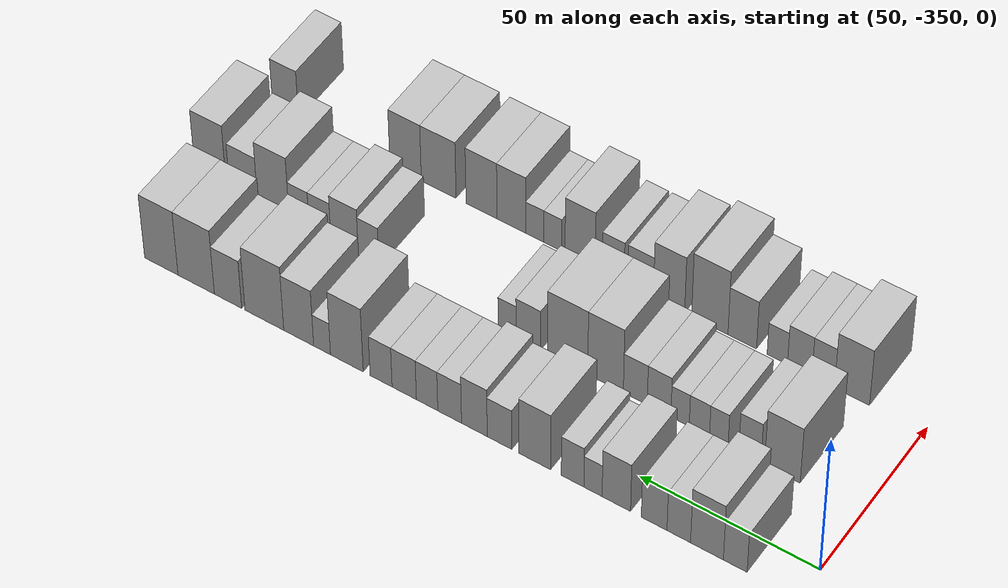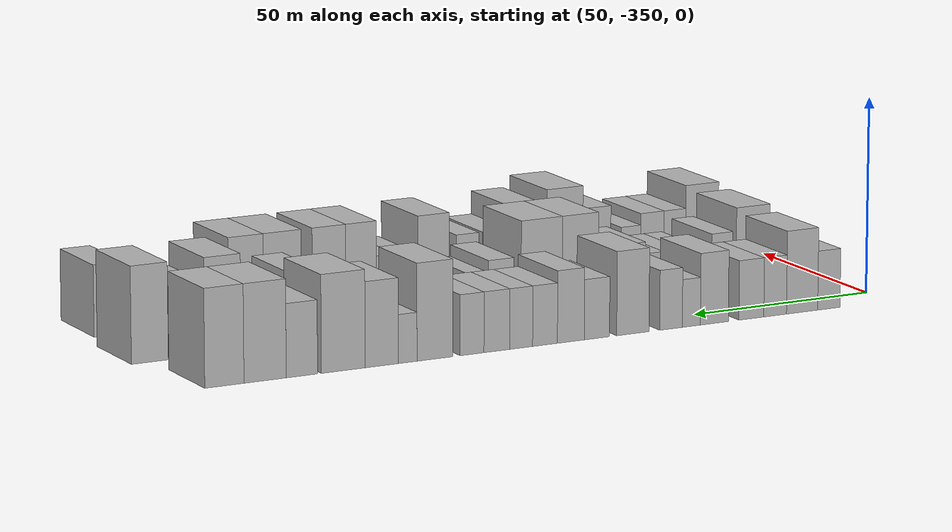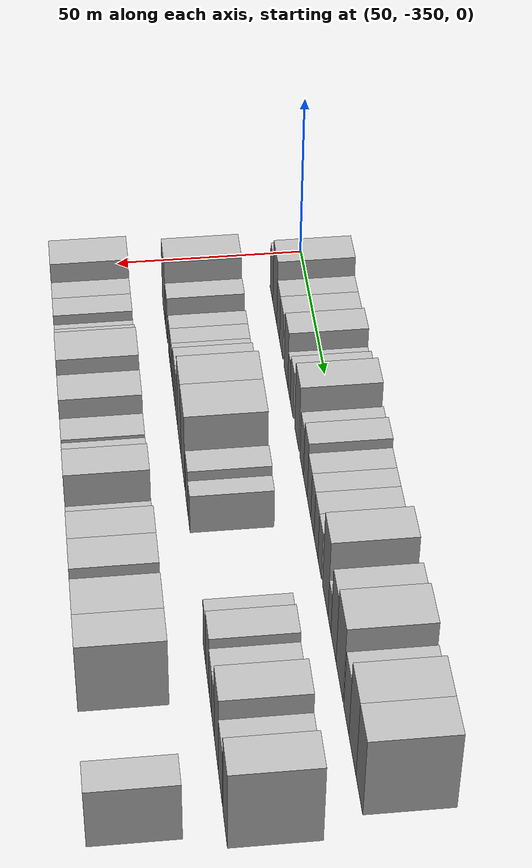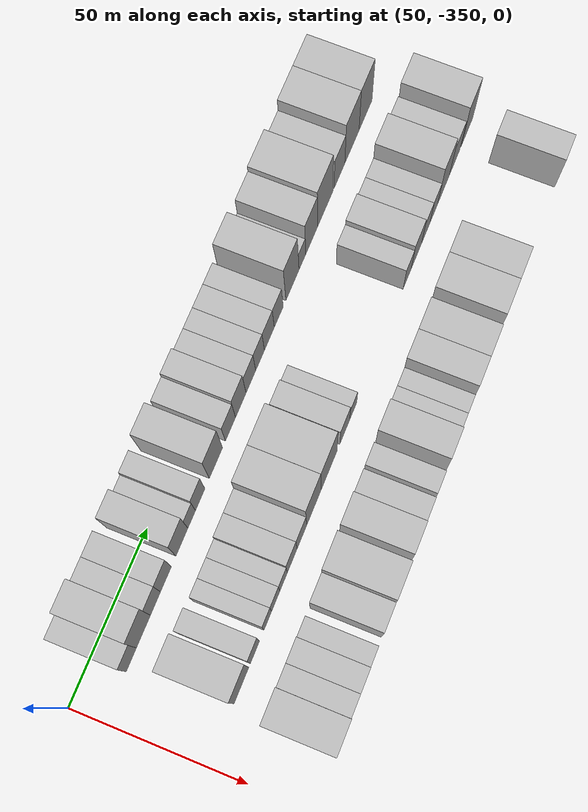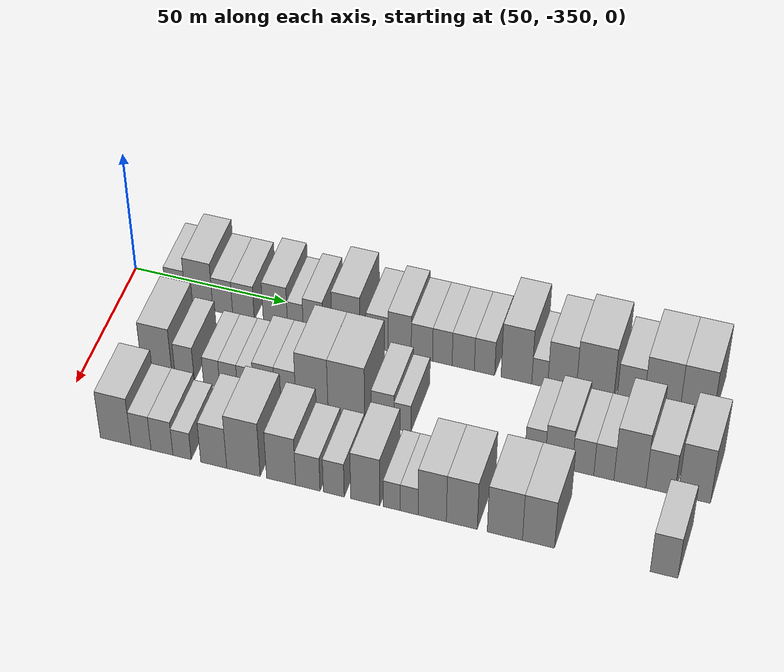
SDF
<sdf version="1.6">
 <world name="default">
  <model name="building_1">
   <static>1</static>
   <pose>50.0000 -332.7502 0 0.000000 0.000000 0.000000</pose>
   <link name="link">
    <pose>0 0 7.50 0 0 0</pose>
    <collision name="collision"><geometry><box><size>20.0000 6.4996 15.0000</size></box></geometry></collision>
    <visual name="visual">
     <cast_shadows>0</cast_shadows>
     <geometry><box><size>20.0000 6.4996 15.0000</size></box></geometry>
     <material>
      <script>
       <uri>model://HANNAS_wall/materials/scripts</uri>
       <uri>model://HANNAS_wall/materials/textures</uri>
       <name>vrc/HANNAS_wall</name>
      </script>
     </material>
    </visual>
   </link>
  </model>
  <model name="building_2">
   <static>1</static>
   <pose>50.0000 -324.9821 0 0.000000 0.000000 0.000000</pose>
   <link name="link">
    <pose>0 0 10.50 0 0 0</pose>
    <collision name="collision"><geometry><box><size>20.0000 9.0366 21.0000</size></box></geometry></collision>
    <visual name="visual">
     <cast_shadows>0</cast_shadows>
     <geometry><box><size>20.0000 9.0366 21.0000</size></box></geometry>
     <material>
      <script>
       <uri>model://HANNAS_wall/materials/scripts</uri>
       <uri>model://HANNAS_wall/materials/textures</uri>
       <name>vrc/HANNAS_wall</name>
      </script>
     </material>
    </visual>
   </link>
  </model>
  <model name="building_3">
   <static>1</static>
   <pose>50.0000 -317.1973 0 0.000000 0.000000 0.000000</pose>
   <link name="link">
    <pose>0 0 7.50 0 0 0</pose>
    <collision name="collision"><geometry><box><size>20.0000 6.5330 15.0000</size></box></geometry></collision>
    <visual name="visual">
     <cast_shadows>0</cast_shadows>
     <geometry><box><size>20.0000 6.5330 15.0000</size></box></geometry>
     <material>
      <script>
       <uri>model://HANNAS_wall/materials/scripts</uri>
       <uri>model://HANNAS_wall/materials/textures</uri>
       <name>vrc/HANNAS_wall</name>
      </script>
     </material>
    </visual>
   </link>
  </model>
  <model name="building_4">
   <static>1</static>
   <pose>50.0000 -310.3645 0 0.000000 0.000000 0.000000</pose>
   <link name="link">
    <pose>0 0 7.50 0 0 0</pose>
    <collision name="collision"><geometry><box><size>20.0000 7.1325 15.0000</size></box></geometry></collision>
    <visual name="visual">
     <cast_shadows>0</cast_shadows>
     <geometry><box><size>20.0000 7.1325 15.0000</size></box></geometry>
     <material>
      <script>
       <uri>model://HANNAS_wall/materials/scripts</uri>
       <uri>model://HANNAS_wall/materials/textures</uri>
       <name>vrc/HANNAS_wall</name>
      </script>
     </material>
    </visual>
   </link>
  </model>
  <model name="building_5">
   <static>1</static>
   <pose>50.0000 -299.8207 0 0.000000 0.000000 0.000000</pose>
   <link name="link">
    <pose>0 0 9.00 0 0 0</pose>
    <collision name="collision"><geometry><box><size>20.0000 7.9552 18.0000</size></box></geometry></collision>
    <visual name="visual">
     <cast_shadows>0</cast_shadows>
     <geometry><box><size>20.0000 7.9552 18.0000</size></box></geometry>
     <material>
      <script>
       <uri>model://HANNAS_wall/materials/scripts</uri>
       <uri>model://HANNAS_wall/materials/textures</uri>
       <name>vrc/HANNAS_wall</name>
      </script>
     </material>
    </visual>
   </link>
  </model>
  <model name="building_6">
   <static>1</static>
   <pose>50.0000 -293.2829 0 0.000000 0.000000 0.000000</pose>
   <link name="link">
    <pose>0 0 6.00 0 0 0</pose>
    <collision name="collision"><geometry><box><size>20.0000 5.1203 12.0000</size></box></geometry></collision>
    <visual name="visual">
     <cast_shadows>0</cast_shadows>
     <geometry><box><size>20.0000 5.1203 12.0000</size></box></geometry>
     <material>
      <script>
       <uri>model://HANNAS_wall/materials/scripts</uri>
       <uri>model://HANNAS_wall/materials/textures</uri>
       <name>vrc/HANNAS_wall</name>
      </script>
     </material>
    </visual>
   </link>
  </model>
  <model name="building_7">
   <static>1</static>
   <pose>50.0000 -287.5324 0 0.000000 0.000000 0.000000</pose>
   <link name="link">
    <pose>0 0 7.50 0 0 0</pose>
    <collision name="collision"><geometry><box><size>20.0000 6.3807 15.0000</size></box></geometry></collision>
    <visual name="visual">
     <cast_shadows>0</cast_shadows>
     <geometry><box><size>20.0000 6.3807 15.0000</size></box></geometry>
     <material>
      <script>
       <uri>model://HANNAS_wall/materials/scripts</uri>
       <uri>model://HANNAS_wall/materials/textures</uri>
       <name>vrc/HANNAS_wall</name>
      </script>
     </material>
    </visual>
   </link>
  </model>
  <model name="building_8">
   <static>1</static>
   <pose>50.0000 -276.8166 0 0.000000 0.000000 0.000000</pose>
   <link name="link">
    <pose>0 0 10.50 0 0 0</pose>
    <collision name="collision"><geometry><box><size>20.0000 9.0508 21.0000</size></box></geometry></collision>
    <visual name="visual">
     <cast_shadows>0</cast_shadows>
     <geometry><box><size>20.0000 9.0508 21.0000</size></box></geometry>
     <material>
      <script>
       <uri>model://HANNAS_wall/materials/scripts</uri>
       <uri>model://HANNAS_wall/materials/textures</uri>
       <name>vrc/HANNAS_wall</name>
      </script>
     </material>
    </visual>
   </link>
  </model>
  <model name="building_9">
   <static>1</static>
   <pose>50.0000 -266.7772 0 0.000000 0.000000 0.000000</pose>
   <link name="link">
    <pose>0 0 7.50 0 0 0</pose>
    <collision name="collision"><geometry><box><size>20.0000 7.0281 15.0000</size></box></geometry></collision>
    <visual name="visual">
     <cast_shadows>0</cast_shadows>
     <geometry><box><size>20.0000 7.0281 15.0000</size></box></geometry>
     <material>
      <script>
       <uri>model://HANNAS_wall/materials/scripts</uri>
       <uri>model://HANNAS_wall/materials/textures</uri>
       <name>vrc/HANNAS_wall</name>
      </script>
     </material>
    </visual>
   </link>
  </model>
  <model name="building_10">
   <static>1</static>
   <pose>50.0000 -259.5586 0 0.000000 0.000000 0.000000</pose>
   <link name="link">
    <pose>0 0 9.00 0 0 0</pose>
    <collision name="collision"><geometry><box><size>20.0000 7.4089 18.0000</size></box></geometry></collision>
    <visual name="visual">
     <cast_shadows>0</cast_shadows>
     <geometry><box><size>20.0000 7.4089 18.0000</size></box></geometry>
     <material>
      <script>
       <uri>model://HANNAS_wall/materials/scripts</uri>
       <uri>model://HANNAS_wall/materials/textures</uri>
       <name>vrc/HANNAS_wall</name>
      </script>
     </material>
    </visual>
   </link>
  </model>
  <model name="building_11">
   <static>1</static>
   <pose>50.0000 -252.4338 0 0.000000 0.000000 0.000000</pose>
   <link name="link">
    <pose>0 0 7.50 0 0 0</pose>
    <collision name="collision"><geometry><box><size>20.0000 6.8408 15.0000</size></box></geometry></collision>
    <visual name="visual">
     <cast_shadows>0</cast_shadows>
     <geometry><box><size>20.0000 6.8408 15.0000</size></box></geometry>
     <material>
      <script>
       <uri>model://HANNAS_wall/materials/scripts</uri>
       <uri>model://HANNAS_wall/materials/textures</uri>
       <name>vrc/HANNAS_wall</name>
      </script>
     </material>
    </visual>
   </link>
  </model>
  <model name="building_12">
   <static>1</static>
   <pose>50.0000 -245.9089 0 0.000000 0.000000 0.000000</pose>
   <link name="link">
    <pose>0 0 7.50 0 0 0</pose>
    <collision name="collision"><geometry><box><size>20.0000 6.2089 15.0000</size></box></geometry></collision>
    <visual name="visual">
     <cast_shadows>0</cast_shadows>
     <geometry><box><size>20.0000 6.2089 15.0000</size></box></geometry>
     <material>
      <script>
       <uri>model://HANNAS_wall/materials/scripts</uri>
       <uri>model://HANNAS_wall/materials/textures</uri>
       <name>vrc/HANNAS_wall</name>
      </script>
     </material>
    </visual>
   </link>
  </model>
  <model name="building_13">
   <static>1</static>
   <pose>50.0000 -239.2662 0 0.000000 0.000000 0.000000</pose>
   <link name="link">
    <pose>0 0 7.50 0 0 0</pose>
    <collision name="collision"><geometry><box><size>20.0000 7.0766 15.0000</size></box></geometry></collision>
    <visual name="visual">
     <cast_shadows>0</cast_shadows>
     <geometry><box><size>20.0000 7.0766 15.0000</size></box></geometry>
     <material>
      <script>
       <uri>model://HANNAS_wall/materials/scripts</uri>
       <uri>model://HANNAS_wall/materials/textures</uri>
       <name>vrc/HANNAS_wall</name>
      </script>
     </material>
    </visual>
   </link>
  </model>
  <model name="building_14">
   <static>1</static>
   <pose>50.0000 -232.5082 0 0.000000 0.000000 0.000000</pose>
   <link name="link">
    <pose>0 0 7.50 0 0 0</pose>
    <collision name="collision"><geometry><box><size>20.0000 6.4395 15.0000</size></box></geometry></collision>
    <visual name="visual">
     <cast_shadows>0</cast_shadows>
     <geometry><box><size>20.0000 6.4395 15.0000</size></box></geometry>
     <material>
      <script>
       <uri>model://HANNAS_wall/materials/scripts</uri>
       <uri>model://HANNAS_wall/materials/textures</uri>
       <name>vrc/HANNAS_wall</name>
      </script>
     </material>
    </visual>
   </link>
  </model>
  <model name="building_15">
   <static>1</static>
   <pose>50.0000 -222.4630 0 0.000000 0.000000 0.000000</pose>
   <link name="link">
    <pose>0 0 12.00 0 0 0</pose>
    <collision name="collision"><geometry><box><size>20.0000 9.6509 24.0000</size></box></geometry></collision>
    <visual name="visual">
     <cast_shadows>0</cast_shadows>
     <geometry><box><size>20.0000 9.6509 24.0000</size></box></geometry>
     <material>
      <script>
       <uri>model://HANNAS_wall/materials/scripts</uri>
       <uri>model://HANNAS_wall/materials/textures</uri>
       <name>vrc/HANNAS_wall</name>
      </script>
     </material>
    </visual>
   </link>
  </model>
  <model name="building_16">
   <static>1</static>
   <pose>50.0000 -215.1452 0 0.000000 0.000000 0.000000</pose>
   <link name="link">
    <pose>0 0 6.00 0 0 0</pose>
    <collision name="collision"><geometry><box><size>20.0000 4.9846 12.0000</size></box></geometry></collision>
    <visual name="visual">
     <cast_shadows>0</cast_shadows>
     <geometry><box><size>20.0000 4.9846 12.0000</size></box></geometry>
     <material>
      <script>
       <uri>model://HANNAS_wall/materials/scripts</uri>
       <uri>model://HANNAS_wall/materials/textures</uri>
       <name>vrc/HANNAS_wall</name>
      </script>
     </material>
    </visual>
   </link>
  </model>
  <model name="building_17">
   <static>1</static>
   <pose>50.0000 -208.2142 0 0.000000 0.000000 0.000000</pose>
   <link name="link">
    <pose>0 0 10.50 0 0 0</pose>
    <collision name="collision"><geometry><box><size>20.0000 8.8775 21.0000</size></box></geometry></collision>
    <visual name="visual">
     <cast_shadows>0</cast_shadows>
     <geometry><box><size>20.0000 8.8775 21.0000</size></box></geometry>
     <material>
      <script>
       <uri>model://HANNAS_wall/materials/scripts</uri>
       <uri>model://HANNAS_wall/materials/textures</uri>
       <name>vrc/HANNAS_wall</name>
      </script>
     </material>
    </visual>
   </link>
  </model>
  <model name="building_18">
   <static>1</static>
   <pose>50.0000 -197.9803 0 0.000000 0.000000 0.000000</pose>
   <link name="link">
    <pose>0 0 12.00 0 0 0</pose>
    <collision name="collision"><geometry><box><size>20.0000 11.5903 24.0000</size></box></geometry></collision>
    <visual name="visual">
     <cast_shadows>0</cast_shadows>
     <geometry><box><size>20.0000 11.5903 24.0000</size></box></geometry>
     <material>
      <script>
       <uri>model://HANNAS_wall/materials/scripts</uri>
       <uri>model://HANNAS_wall/materials/textures</uri>
       <name>vrc/HANNAS_wall</name>
      </script>
     </material>
    </visual>
   </link>
  </model>
  <model name="building_19">
   <static>1</static>
   <pose>50.0000 -187.0728 0 0.000000 0.000000 0.000000</pose>
   <link name="link">
    <pose>0 0 9.00 0 0 0</pose>
    <collision name="collision"><geometry><box><size>20.0000 8.2246 18.0000</size></box></geometry></collision>
    <visual name="visual">
     <cast_shadows>0</cast_shadows>
     <geometry><box><size>20.0000 8.2246 18.0000</size></box></geometry>
     <material>
      <script>
       <uri>model://HANNAS_wall/materials/scripts</uri>
       <uri>model://HANNAS_wall/materials/textures</uri>
       <name>vrc/HANNAS_wall</name>
      </script>
     </material>
    </visual>
   </link>
  </model>
  <model name="building_20">
   <static>1</static>
   <pose>50.0000 -177.4510 0 0.000000 0.000000 0.000000</pose>
   <link name="link">
    <pose>0 0 12.00 0 0 0</pose>
    <collision name="collision"><geometry><box><size>20.0000 11.0190 24.0000</size></box></geometry></collision>
    <visual name="visual">
     <cast_shadows>0</cast_shadows>
     <geometry><box><size>20.0000 11.0190 24.0000</size></box></geometry>
     <material>
      <script>
       <uri>model://HANNAS_wall/materials/scripts</uri>
       <uri>model://HANNAS_wall/materials/textures</uri>
       <name>vrc/HANNAS_wall</name>
      </script>
     </material>
    </visual>
   </link>
  </model>
  <model name="building_21">
   <static>1</static>
   <pose>50.0000 -166.8628 0 0.000000 0.000000 0.000000</pose>
   <link name="link">
    <pose>0 0 12.00 0 0 0</pose>
    <collision name="collision"><geometry><box><size>20.0000 10.1574 24.0000</size></box></geometry></collision>
    <visual name="visual">
     <cast_shadows>0</cast_shadows>
     <geometry><box><size>20.0000 10.1574 24.0000</size></box></geometry>
     <material>
      <script>
       <uri>model://HANNAS_wall/materials/scripts</uri>
       <uri>model://HANNAS_wall/materials/textures</uri>
       <name>vrc/HANNAS_wall</name>
      </script>
     </material>
    </visual>
   </link>
  </model>
  <model name="building_80">
   <static>1</static>
   <pose>79.0000 -328.0657 0 0.000000 0.000000 0.000000</pose>
   <link name="link">
    <pose>0 0 10.50 0 0 0</pose>
    <collision name="collision"><geometry><box><size>20.0000 9.8685 21.0000</size></box></geometry></collision>
    <visual name="visual">
     <cast_shadows>0</cast_shadows>
     <geometry><box><size>20.0000 9.8685 21.0000</size></box></geometry>
     <material>
      <script>
       <uri>model://HANNAS_wall/materials/scripts</uri>
       <uri>model://HANNAS_wall/materials/textures</uri>
       <name>vrc/HANNAS_wall</name>
      </script>
     </material>
    </visual>
   </link>
  </model>
  <model name="building_81">
   <static>1</static>
   <pose>79.0000 -319.0345 0 0.000000 0.000000 0.000000</pose>
   <link name="link">
    <pose>0 0 7.50 0 0 0</pose>
    <collision name="collision"><geometry><box><size>20.0000 6.1940 15.0000</size></box></geometry></collision>
    <visual name="visual">
     <cast_shadows>0</cast_shadows>
     <geometry><box><size>20.0000 6.1940 15.0000</size></box></geometry>
     <material>
      <script>
       <uri>model://HANNAS_wall/materials/scripts</uri>
       <uri>model://HANNAS_wall/materials/textures</uri>
       <name>vrc/HANNAS_wall</name>
      </script>
     </material>
    </visual>
   </link>
  </model>
  <model name="building_82">
   <static>1</static>
   <pose>79.0000 -310.3296 0 0.000000 0.000000 0.000000</pose>
   <link name="link">
    <pose>0 0 6.00 0 0 0</pose>
    <collision name="collision"><geometry><box><size>20.0000 5.2157 12.0000</size></box></geometry></collision>
    <visual name="visual">
     <cast_shadows>0</cast_shadows>
     <geometry><box><size>20.0000 5.2157 12.0000</size></box></geometry>
     <material>
      <script>
       <uri>model://HANNAS_wall/materials/scripts</uri>
       <uri>model://HANNAS_wall/materials/textures</uri>
       <name>vrc/HANNAS_wall</name>
      </script>
     </material>
    </visual>
   </link>
  </model>
  <model name="building_83">
   <static>1</static>
   <pose>79.0000 -304.8706 0 0.000000 0.000000 0.000000</pose>
   <link name="link">
    <pose>0 0 6.00 0 0 0</pose>
    <collision name="collision"><geometry><box><size>20.0000 5.7024 12.0000</size></box></geometry></collision>
    <visual name="visual">
     <cast_shadows>0</cast_shadows>
     <geometry><box><size>20.0000 5.7024 12.0000</size></box></geometry>
     <material>
      <script>
       <uri>model://HANNAS_wall/materials/scripts</uri>
       <uri>model://HANNAS_wall/materials/textures</uri>
       <name>vrc/HANNAS_wall</name>
      </script>
     </material>
    </visual>
   </link>
  </model>
  <model name="building_84">
   <static>1</static>
   <pose>79.0000 -299.4359 0 0.000000 0.000000 0.000000</pose>
   <link name="link">
    <pose>0 0 6.00 0 0 0</pose>
    <collision name="collision"><geometry><box><size>20.0000 5.1671 12.0000</size></box></geometry></collision>
    <visual name="visual">
     <cast_shadows>0</cast_shadows>
     <geometry><box><size>20.0000 5.1671 12.0000</size></box></geometry>
     <material>
      <script>
       <uri>model://HANNAS_wall/materials/scripts</uri>
       <uri>model://HANNAS_wall/materials/textures</uri>
       <name>vrc/HANNAS_wall</name>
      </script>
     </material>
    </visual>
   </link>
  </model>
  <model name="building_85">
   <static>1</static>
   <pose>79.0000 -293.4940 0 0.000000 0.000000 0.000000</pose>
   <link name="link">
    <pose>0 0 7.50 0 0 0</pose>
    <collision name="collision"><geometry><box><size>20.0000 6.7167 15.0000</size></box></geometry></collision>
    <visual name="visual">
     <cast_shadows>0</cast_shadows>
     <geometry><box><size>20.0000 6.7167 15.0000</size></box></geometry>
     <material>
      <script>
       <uri>model://HANNAS_wall/materials/scripts</uri>
       <uri>model://HANNAS_wall/materials/textures</uri>
       <name>vrc/HANNAS_wall</name>
      </script>
     </material>
    </visual>
   </link>
  </model>
  <model name="building_86">
   <static>1</static>
   <pose>79.0000 -286.7397 0 0.000000 0.000000 0.000000</pose>
   <link name="link">
    <pose>0 0 7.50 0 0 0</pose>
    <collision name="collision"><geometry><box><size>20.0000 6.7917 15.0000</size></box></geometry></collision>
    <visual name="visual">
     <cast_shadows>0</cast_shadows>
     <geometry><box><size>20.0000 6.7917 15.0000</size></box></geometry>
     <material>
      <script>
       <uri>model://HANNAS_wall/materials/scripts</uri>
       <uri>model://HANNAS_wall/materials/textures</uri>
       <name>vrc/HANNAS_wall</name>
      </script>
     </material>
    </visual>
   </link>
  </model>
  <model name="building_87">
   <static>1</static>
   <pose>79.0000 -278.2491 0 0.000000 0.000000 0.000000</pose>
   <link name="link">
    <pose>0 0 12.00 0 0 0</pose>
    <collision name="collision"><geometry><box><size>20.0000 10.1896 24.0000</size></box></geometry></collision>
    <visual name="visual">
     <cast_shadows>0</cast_shadows>
     <geometry><box><size>20.0000 10.1896 24.0000</size></box></geometry>
     <material>
      <script>
       <uri>model://HANNAS_wall/materials/scripts</uri>
       <uri>model://HANNAS_wall/materials/textures</uri>
       <name>vrc/HANNAS_wall</name>
      </script>
     </material>
    </visual>
   </link>
  </model>
  <model name="building_88">
   <static>1</static>
   <pose>79.0000 -267.3664 0 0.000000 0.000000 0.000000</pose>
   <link name="link">
    <pose>0 0 12.00 0 0 0</pose>
    <collision name="collision"><geometry><box><size>20.0000 11.5757 24.0000</size></box></geometry></collision>
    <visual name="visual">
     <cast_shadows>0</cast_shadows>
     <geometry><box><size>20.0000 11.5757 24.0000</size></box></geometry>
     <material>
      <script>
       <uri>model://HANNAS_wall/materials/scripts</uri>
       <uri>model://HANNAS_wall/materials/textures</uri>
       <name>vrc/HANNAS_wall</name>
      </script>
     </material>
    </visual>
   </link>
  </model>
  <model name="building_89">
   <static>1</static>
   <pose>79.0000 -256.0012 0 0.000000 0.000000 0.000000</pose>
   <link name="link">
    <pose>0 0 7.50 0 0 0</pose>
    <collision name="collision"><geometry><box><size>20.0000 7.1547 15.0000</size></box></geometry></collision>
    <visual name="visual">
     <cast_shadows>0</cast_shadows>
     <geometry><box><size>20.0000 7.1547 15.0000</size></box></geometry>
     <material>
      <script>
       <uri>model://HANNAS_wall/materials/scripts</uri>
       <uri>model://HANNAS_wall/materials/textures</uri>
       <name>vrc/HANNAS_wall</name>
      </script>
     </material>
    </visual>
   </link>
  </model>
  <model name="building_90">
   <static>1</static>
   <pose>79.0000 -249.8195 0 0.000000 0.000000 0.000000</pose>
   <link name="link">
    <pose>0 0 6.00 0 0 0</pose>
    <collision name="collision"><geometry><box><size>20.0000 5.2088 12.0000</size></box></geometry></collision>
    <visual name="visual">
     <cast_shadows>0</cast_shadows>
     <geometry><box><size>20.0000 5.2088 12.0000</size></box></geometry>
     <material>
      <script>
       <uri>model://HANNAS_wall/materials/scripts</uri>
       <uri>model://HANNAS_wall/materials/textures</uri>
       <name>vrc/HANNAS_wall</name>
      </script>
     </material>
    </visual>
   </link>
  </model>
  <model name="building_91">
   <static>1</static>
   <pose>79.0000 -208.9390 0 0.000000 0.000000 0.000000</pose>
   <link name="link">
    <pose>0 0 7.50 0 0 0</pose>
    <collision name="collision"><geometry><box><size>20.0000 6.1841 15.0000</size></box></geometry></collision>
    <visual name="visual">
     <cast_shadows>0</cast_shadows>
     <geometry><box><size>20.0000 6.1841 15.0000</size></box></geometry>
     <material>
      <script>
       <uri>model://HANNAS_wall/materials/scripts</uri>
       <uri>model://HANNAS_wall/materials/textures</uri>
       <name>vrc/HANNAS_wall</name>
      </script>
     </material>
    </visual>
   </link>
  </model>
  <model name="building_92">
   <static>1</static>
   <pose>79.0000 -201.7311 0 0.000000 0.000000 0.000000</pose>
   <link name="link">
    <pose>0 0 9.00 0 0 0</pose>
    <collision name="collision"><geometry><box><size>20.0000 8.2317 18.0000</size></box></geometry></collision>
    <visual name="visual">
     <cast_shadows>0</cast_shadows>
     <geometry><box><size>20.0000 8.2317 18.0000</size></box></geometry>
     <material>
      <script>
       <uri>model://HANNAS_wall/materials/scripts</uri>
       <uri>model://HANNAS_wall/materials/textures</uri>
       <name>vrc/HANNAS_wall</name>
      </script>
     </material>
    </visual>
   </link>
  </model>
  <model name="building_93">
   <static>1</static>
   <pose>79.0000 -194.3447 0 0.000000 0.000000 0.000000</pose>
   <link name="link">
    <pose>0 0 7.50 0 0 0</pose>
    <collision name="collision"><geometry><box><size>20.0000 6.5413 15.0000</size></box></geometry></collision>
    <visual name="visual">
     <cast_shadows>0</cast_shadows>
     <geometry><box><size>20.0000 6.5413 15.0000</size></box></geometry>
     <material>
      <script>
       <uri>model://HANNAS_wall/materials/scripts</uri>
       <uri>model://HANNAS_wall/materials/textures</uri>
       <name>vrc/HANNAS_wall</name>
      </script>
     </material>
    </visual>
   </link>
  </model>
  <model name="building_94">
   <static>1</static>
   <pose>79.0000 -188.0424 0 0.000000 0.000000 0.000000</pose>
   <link name="link">
    <pose>0 0 7.50 0 0 0</pose>
    <collision name="collision"><geometry><box><size>20.0000 6.0633 15.0000</size></box></geometry></collision>
    <visual name="visual">
     <cast_shadows>0</cast_shadows>
     <geometry><box><size>20.0000 6.0633 15.0000</size></box></geometry>
     <material>
      <script>
       <uri>model://HANNAS_wall/materials/scripts</uri>
       <uri>model://HANNAS_wall/materials/textures</uri>
       <name>vrc/HANNAS_wall</name>
      </script>
     </material>
    </visual>
   </link>
  </model>
  <model name="building_95">
   <static>1</static>
   <pose>79.0000 -180.2029 0 0.000000 0.000000 0.000000</pose>
   <link name="link">
    <pose>0 0 12.00 0 0 0</pose>
    <collision name="collision"><geometry><box><size>20.0000 9.6157 24.0000</size></box></geometry></collision>
    <visual name="visual">
     <cast_shadows>0</cast_shadows>
     <geometry><box><size>20.0000 9.6157 24.0000</size></box></geometry>
     <material>
      <script>
       <uri>model://HANNAS_wall/materials/scripts</uri>
       <uri>model://HANNAS_wall/materials/textures</uri>
       <name>vrc/HANNAS_wall</name>
      </script>
     </material>
    </visual>
   </link>
  </model>
  <model name="building_96">
   <static>1</static>
   <pose>79.0000 -171.1014 0 0.000000 0.000000 0.000000</pose>
   <link name="link">
    <pose>0 0 9.00 0 0 0</pose>
    <collision name="collision"><geometry><box><size>20.0000 8.5872 18.0000</size></box></geometry></collision>
    <visual name="visual">
     <cast_shadows>0</cast_shadows>
     <geometry><box><size>20.0000 8.5872 18.0000</size></box></geometry>
     <material>
      <script>
       <uri>model://HANNAS_wall/materials/scripts</uri>
       <uri>model://HANNAS_wall/materials/textures</uri>
       <name>vrc/HANNAS_wall</name>
      </script>
     </material>
    </visual>
   </link>
  </model>
  <model name="building_97">
   <static>1</static>
   <pose>79.0000 -160.9736 0 0.000000 0.000000 0.000000</pose>
   <link name="link">
    <pose>0 0 12.00 0 0 0</pose>
    <collision name="collision"><geometry><box><size>20.0000 9.6682 24.0000</size></box></geometry></collision>
    <visual name="visual">
     <cast_shadows>0</cast_shadows>
     <geometry><box><size>20.0000 9.6682 24.0000</size></box></geometry>
     <material>
      <script>
       <uri>model://HANNAS_wall/materials/scripts</uri>
       <uri>model://HANNAS_wall/materials/textures</uri>
       <name>vrc/HANNAS_wall</name>
      </script>
     </material>
    </visual>
   </link>
  </model>
  <model name="building_150">
   <static>1</static>
   <pose>108.0000 -330.1122 0 0.000000 0.000000 0.000000</pose>
   <link name="link">
    <pose>0 0 10.50 0 0 0</pose>
    <collision name="collision"><geometry><box><size>20.0000 9.7755 21.0000</size></box></geometry></collision>
    <visual name="visual">
     <cast_shadows>0</cast_shadows>
     <geometry><box><size>20.0000 9.7755 21.0000</size></box></geometry>
     <material>
      <script>
       <uri>model://HANNAS_wall/materials/scripts</uri>
       <uri>model://HANNAS_wall/materials/textures</uri>
       <name>vrc/HANNAS_wall</name>
      </script>
     </material>
    </visual>
   </link>
  </model>
  <model name="building_151">
   <static>1</static>
   <pose>108.0000 -322.0448 0 0.000000 0.000000 0.000000</pose>
   <link name="link">
    <pose>0 0 7.50 0 0 0</pose>
    <collision name="collision"><geometry><box><size>20.0000 6.3593 15.0000</size></box></geometry></collision>
    <visual name="visual">
     <cast_shadows>0</cast_shadows>
     <geometry><box><size>20.0000 6.3593 15.0000</size></box></geometry>
     <material>
      <script>
       <uri>model://HANNAS_wall/materials/scripts</uri>
       <uri>model://HANNAS_wall/materials/textures</uri>
       <name>vrc/HANNAS_wall</name>
      </script>
     </material>
    </visual>
   </link>
  </model>
  <model name="building_152">
   <static>1</static>
   <pose>108.0000 -315.4157 0 0.000000 0.000000 0.000000</pose>
   <link name="link">
    <pose>0 0 7.50 0 0 0</pose>
    <collision name="collision"><geometry><box><size>20.0000 6.8989 15.0000</size></box></geometry></collision>
    <visual name="visual">
     <cast_shadows>0</cast_shadows>
     <geometry><box><size>20.0000 6.8989 15.0000</size></box></geometry>
     <material>
      <script>
       <uri>model://HANNAS_wall/materials/scripts</uri>
       <uri>model://HANNAS_wall/materials/textures</uri>
       <name>vrc/HANNAS_wall</name>
      </script>
     </material>
    </visual>
   </link>
  </model>
  <model name="building_153">
   <static>1</static>
   <pose>108.0000 -309.0846 0 0.000000 0.000000 0.000000</pose>
   <link name="link">
    <pose>0 0 6.00 0 0 0</pose>
    <collision name="collision"><geometry><box><size>20.0000 5.7633 12.0000</size></box></geometry></collision>
    <visual name="visual">
     <cast_shadows>0</cast_shadows>
     <geometry><box><size>20.0000 5.7633 12.0000</size></box></geometry>
     <material>
      <script>
       <uri>model://HANNAS_wall/materials/scripts</uri>
       <uri>model://HANNAS_wall/materials/textures</uri>
       <name>vrc/HANNAS_wall</name>
      </script>
     </material>
    </visual>
   </link>
  </model>
  <model name="building_154">
   <static>1</static>
   <pose>108.0000 -299.1331 0 0.000000 0.000000 0.000000</pose>
   <link name="link">
    <pose>0 0 9.00 0 0 0</pose>
    <collision name="collision"><geometry><box><size>20.0000 8.1396 18.0000</size></box></geometry></collision>
    <visual name="visual">
     <cast_shadows>0</cast_shadows>
     <geometry><box><size>20.0000 8.1396 18.0000</size></box></geometry>
     <material>
      <script>
       <uri>model://HANNAS_wall/materials/scripts</uri>
       <uri>model://HANNAS_wall/materials/textures</uri>
       <name>vrc/HANNAS_wall</name>
      </script>
     </material>
    </visual>
   </link>
  </model>
  <model name="building_155">
   <static>1</static>
   <pose>108.0000 -289.8540 0 0.000000 0.000000 0.000000</pose>
   <link name="link">
    <pose>0 0 12.00 0 0 0</pose>
    <collision name="collision"><geometry><box><size>20.0000 10.4186 24.0000</size></box></geometry></collision>
    <visual name="visual">
     <cast_shadows>0</cast_shadows>
     <geometry><box><size>20.0000 10.4186 24.0000</size></box></geometry>
     <material>
      <script>
       <uri>model://HANNAS_wall/materials/scripts</uri>
       <uri>model://HANNAS_wall/materials/textures</uri>
       <name>vrc/HANNAS_wall</name>
      </script>
     </material>
    </visual>
   </link>
  </model>
  <model name="building_156">
   <static>1</static>
   <pose>108.0000 -278.1370 0 0.000000 0.000000 0.000000</pose>
   <link name="link">
    <pose>0 0 10.50 0 0 0</pose>
    <collision name="collision"><geometry><box><size>20.0000 9.0155 21.0000</size></box></geometry></collision>
    <visual name="visual">
     <cast_shadows>0</cast_shadows>
     <geometry><box><size>20.0000 9.0155 21.0000</size></box></geometry>
     <material>
      <script>
       <uri>model://HANNAS_wall/materials/scripts</uri>
       <uri>model://HANNAS_wall/materials/textures</uri>
       <name>vrc/HANNAS_wall</name>
      </script>
     </material>
    </visual>
   </link>
  </model>
  <model name="building_157">
   <static>1</static>
   <pose>108.0000 -269.8794 0 0.000000 0.000000 0.000000</pose>
   <link name="link">
    <pose>0 0 7.50 0 0 0</pose>
    <collision name="collision"><geometry><box><size>20.0000 7.4997 15.0000</size></box></geometry></collision>
    <visual name="visual">
     <cast_shadows>0</cast_shadows>
     <geometry><box><size>20.0000 7.4997 15.0000</size></box></geometry>
     <material>
      <script>
       <uri>model://HANNAS_wall/materials/scripts</uri>
       <uri>model://HANNAS_wall/materials/textures</uri>
       <name>vrc/HANNAS_wall</name>
      </script>
     </material>
    </visual>
   </link>
  </model>
  <model name="building_158">
   <static>1</static>
   <pose>108.0000 -261.9154 0 0.000000 0.000000 0.000000</pose>
   <link name="link">
    <pose>0 0 7.50 0 0 0</pose>
    <collision name="collision"><geometry><box><size>20.0000 6.4282 15.0000</size></box></geometry></collision>
    <visual name="visual">
     <cast_shadows>0</cast_shadows>
     <geometry><box><size>20.0000 6.4282 15.0000</size></box></geometry>
     <material>
      <script>
       <uri>model://HANNAS_wall/materials/scripts</uri>
       <uri>model://HANNAS_wall/materials/textures</uri>
       <name>vrc/HANNAS_wall</name>
      </script>
     </material>
    </visual>
   </link>
  </model>
  <model name="building_159">
   <static>1</static>
   <pose>108.0000 -252.2662 0 0.000000 0.000000 0.000000</pose>
   <link name="link">
    <pose>0 0 10.50 0 0 0</pose>
    <collision name="collision"><geometry><box><size>20.0000 8.8703 21.0000</size></box></geometry></collision>
    <visual name="visual">
     <cast_shadows>0</cast_shadows>
     <geometry><box><size>20.0000 8.8703 21.0000</size></box></geometry>
     <material>
      <script>
       <uri>model://HANNAS_wall/materials/scripts</uri>
       <uri>model://HANNAS_wall/materials/textures</uri>
       <name>vrc/HANNAS_wall</name>
      </script>
     </material>
    </visual>
   </link>
  </model>
  <model name="building_160">
   <static>1</static>
   <pose>108.0000 -244.2322 0 0.000000 0.000000 0.000000</pose>
   <link name="link">
    <pose>0 0 6.00 0 0 0</pose>
    <collision name="collision"><geometry><box><size>20.0000 5.1976 12.0000</size></box></geometry></collision>
    <visual name="visual">
     <cast_shadows>0</cast_shadows>
     <geometry><box><size>20.0000 5.1976 12.0000</size></box></geometry>
     <material>
      <script>
       <uri>model://HANNAS_wall/materials/scripts</uri>
       <uri>model://HANNAS_wall/materials/textures</uri>
       <name>vrc/HANNAS_wall</name>
      </script>
     </material>
    </visual>
   </link>
  </model>
  <model name="building_161">
   <static>1</static>
   <pose>108.0000 -238.9422 0 0.000000 0.000000 0.000000</pose>
   <link name="link">
    <pose>0 0 6.00 0 0 0</pose>
    <collision name="collision"><geometry><box><size>20.0000 5.3823 12.0000</size></box></geometry></collision>
    <visual name="visual">
     <cast_shadows>0</cast_shadows>
     <geometry><box><size>20.0000 5.3823 12.0000</size></box></geometry>
     <material>
      <script>
       <uri>model://HANNAS_wall/materials/scripts</uri>
       <uri>model://HANNAS_wall/materials/textures</uri>
       <name>vrc/HANNAS_wall</name>
      </script>
     </material>
    </visual>
   </link>
  </model>
  <model name="building_162">
   <static>1</static>
   <pose>108.0000 -231.9858 0 0.000000 0.000000 0.000000</pose>
   <link name="link">
    <pose>0 0 10.50 0 0 0</pose>
    <collision name="collision"><geometry><box><size>20.0000 8.5306 21.0000</size></box></geometry></collision>
    <visual name="visual">
     <cast_shadows>0</cast_shadows>
     <geometry><box><size>20.0000 8.5306 21.0000</size></box></geometry>
     <material>
      <script>
       <uri>model://HANNAS_wall/materials/scripts</uri>
       <uri>model://HANNAS_wall/materials/textures</uri>
       <name>vrc/HANNAS_wall</name>
      </script>
     </material>
    </visual>
   </link>
  </model>
  <model name="building_163">
   <static>1</static>
   <pose>108.0000 -223.0767 0 0.000000 0.000000 0.000000</pose>
   <link name="link">
    <pose>0 0 10.50 0 0 0</pose>
    <collision name="collision"><geometry><box><size>20.0000 9.2876 21.0000</size></box></geometry></collision>
    <visual name="visual">
     <cast_shadows>0</cast_shadows>
     <geometry><box><size>20.0000 9.2876 21.0000</size></box></geometry>
     <material>
      <script>
       <uri>model://HANNAS_wall/materials/scripts</uri>
       <uri>model://HANNAS_wall/materials/textures</uri>
       <name>vrc/HANNAS_wall</name>
      </script>
     </material>
    </visual>
   </link>
  </model>
  <model name="building_164">
   <static>1</static>
   <pose>108.0000 -210.1952 0 0.000000 0.000000 0.000000</pose>
   <link name="link">
    <pose>0 0 10.50 0 0 0</pose>
    <collision name="collision"><geometry><box><size>20.0000 10.4753 21.0000</size></box></geometry></collision>
    <visual name="visual">
     <cast_shadows>0</cast_shadows>
     <geometry><box><size>20.0000 10.4753 21.0000</size></box></geometry>
     <material>
      <script>
       <uri>model://HANNAS_wall/materials/scripts</uri>
       <uri>model://HANNAS_wall/materials/textures</uri>
       <name>vrc/HANNAS_wall</name>
      </script>
     </material>
    </visual>
   </link>
  </model>
  <model name="building_165">
   <static>1</static>
   <pose>108.0000 -200.1954 0 0.000000 0.000000 0.000000</pose>
   <link name="link">
    <pose>0 0 10.50 0 0 0</pose>
    <collision name="collision"><geometry><box><size>20.0000 9.5244 21.0000</size></box></geometry></collision>
    <visual name="visual">
     <cast_shadows>0</cast_shadows>
     <geometry><box><size>20.0000 9.5244 21.0000</size></box></geometry>
     <material>
      <script>
       <uri>model://HANNAS_wall/materials/scripts</uri>
       <uri>model://HANNAS_wall/materials/textures</uri>
       <name>vrc/HANNAS_wall</name>
      </script>
     </material>
    </visual>
   </link>
  </model>
  <model name="building_166">
   <static>1</static>
   <pose>108.0000 -163.3730 0 0.000000 0.000000 0.000000</pose>
   <link name="link">
    <pose>0 0 9.00 0 0 0</pose>
    <collision name="collision"><geometry><box><size>20.0000 8.0401 18.0000</size></box></geometry></collision>
    <visual name="visual">
     <cast_shadows>0</cast_shadows>
     <geometry><box><size>20.0000 8.0401 18.0000</size></box></geometry>
     <material>
      <script>
       <uri>model://HANNAS_wall/materials/scripts</uri>
       <uri>model://HANNAS_wall/materials/textures</uri>
       <name>vrc/HANNAS_wall</name>
      </script>
     </material>
    </visual>
   </link>
  </model>
 </world>
</sdf>
